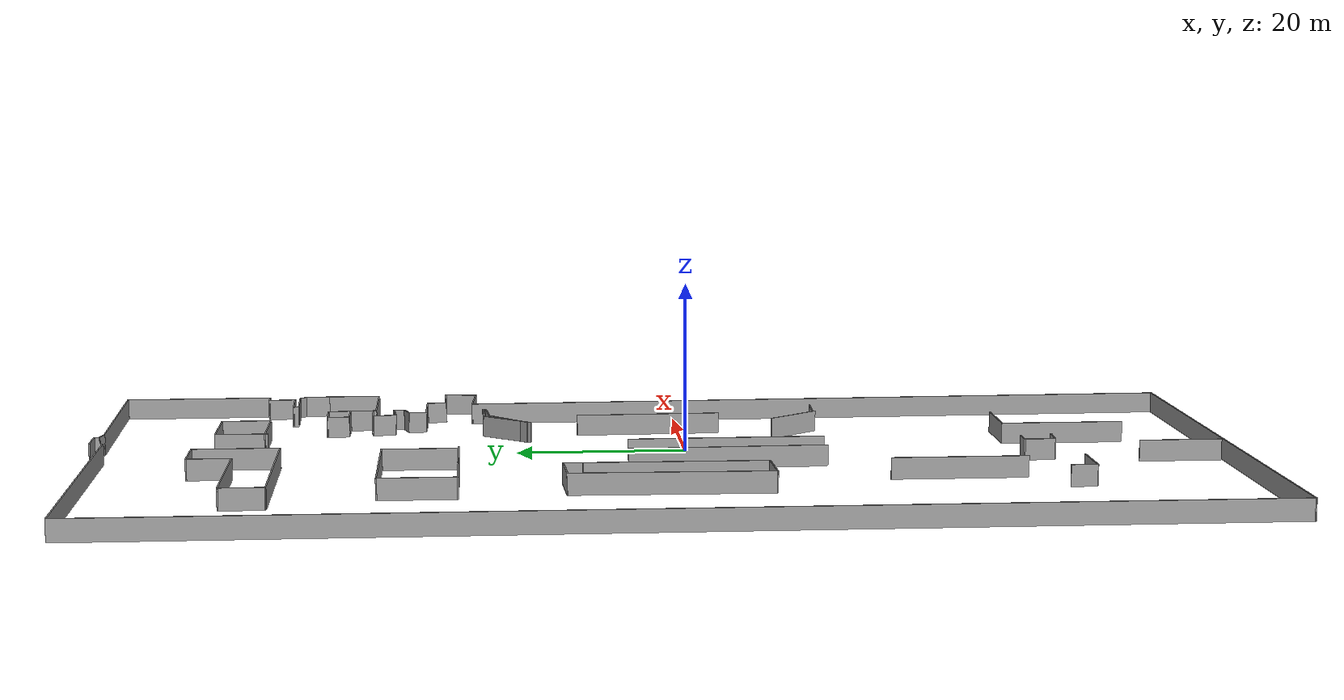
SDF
<?xml version='1.0'?>
<sdf version='1.7'>
  <model name='factory.world'>
    <pose>-7.7475 3.4866 0 0 -0 0</pose>
    <link name='Wall_10'>
      <collision name='Wall_10_Collision'>
        <geometry>
          <box>
            <size>3.4117 0.15 2.5</size>
          </box>
        </geometry>
        <pose>0 0 1.25 0 -0 0</pose>
      </collision>
      <visual name='Wall_10_Visual'>
        <pose>0 0 1.25 0 -0 0</pose>
        <geometry>
          <box>
            <size>3.4117 0.15 2.5</size>
          </box>
        </geometry>
        <material>
          <script>
            <uri>file://media/materials/scripts/gazebo.material</uri>
            <name>Gazebo/Grey</name>
          </script>
          <ambient>1 1 1 1</ambient>
        </material>
        <meta>
          <layer>0</layer>
        </meta>
      </visual>
      <pose>31.6898 45.9914 0 0 -0 -1.55467</pose>
    </link>
    <link name='Wall_11'>
      <collision name='Wall_11_Collision'>
        <geometry>
          <box>
            <size>5.35992 0.15 2.5</size>
          </box>
        </geometry>
        <pose>0 0 1.25 0 -0 0</pose>
      </collision>
      <visual name='Wall_11_Visual'>
        <pose>0 0 1.25 0 -0 0</pose>
        <geometry>
          <box>
            <size>5.35992 0.15 2.5</size>
          </box>
        </geometry>
        <material>
          <script>
            <uri>file://media/materials/scripts/gazebo.material</uri>
            <name>Gazebo/Grey</name>
          </script>
          <ambient>1 1 1 1</ambient>
        </material>
        <meta>
          <layer>0</layer>
        </meta>
      </visual>
      <pose>29.1123 44.2818 0 0 -0 -3.1113</pose>
    </link>
    <link name='Wall_12'>
      <collision name='Wall_12_Collision'>
        <geometry>
          <box>
            <size>0.789922 0.15 2.5</size>
          </box>
        </geometry>
        <pose>0 0 1.25 0 -0 0</pose>
      </collision>
      <visual name='Wall_12_Visual'>
        <pose>0 0 1.25 0 -0 0</pose>
        <geometry>
          <box>
            <size>0.789922 0.15 2.5</size>
          </box>
        </geometry>
        <material>
          <script>
            <uri>file://media/materials/scripts/gazebo.material</uri>
            <name>Gazebo/Grey</name>
          </script>
          <ambient>1 1 1 1</ambient>
        </material>
        <meta>
          <layer>0</layer>
        </meta>
      </visual>
      <pose>26.5612 43.8873 0 0 -0 -1.40565</pose>
    </link>
    <link name='Wall_13'>
      <collision name='Wall_13_Collision'>
        <geometry>
          <box>
            <size>6.15024 0.15 2.5</size>
          </box>
        </geometry>
        <pose>0 0 1.25 0 -0 0</pose>
      </collision>
      <visual name='Wall_13_Visual'>
        <pose>0 0 1.25 0 -0 0</pose>
        <geometry>
          <box>
            <size>6.15024 0.15 2.5</size>
          </box>
        </geometry>
        <material>
          <script>
            <uri>file://media/materials/scripts/gazebo.material</uri>
            <name>Gazebo/Grey</name>
          </script>
          <ambient>1 1 1 1</ambient>
        </material>
        <meta>
          <layer>0</layer>
        </meta>
      </visual>
      <pose>29.612 43.6769 0 0 -0 0.035073</pose>
    </link>
    <link name='Wall_14'>
      <collision name='Wall_14_Collision'>
        <geometry>
          <box>
            <size>1.19629 0.15 2.5</size>
          </box>
        </geometry>
        <pose>0 0 1.25 0 -0 0</pose>
      </collision>
      <visual name='Wall_14_Visual'>
        <pose>0 0 1.25 0 -0 0</pose>
        <geometry>
          <box>
            <size>1.19629 0.15 2.5</size>
          </box>
        </geometry>
        <material>
          <script>
            <uri>file://media/materials/scripts/gazebo.material</uri>
            <name>Gazebo/Grey</name>
          </script>
          <ambient>1 1 1 1</ambient>
        </material>
        <meta>
          <layer>0</layer>
        </meta>
      </visual>
      <pose>32.999 43.432 0 0 -0 -0.733238</pose>
    </link>
    <link name='Wall_15'>
      <collision name='Wall_15_Collision'>
        <geometry>
          <box>
            <size>3.35899 0.15 2.5</size>
          </box>
        </geometry>
        <pose>0 0 1.25 0 -0 0</pose>
      </collision>
      <visual name='Wall_15_Visual'>
        <pose>0 0 1.25 0 -0 0</pose>
        <geometry>
          <box>
            <size>3.35899 0.15 2.5</size>
          </box>
        </geometry>
        <material>
          <script>
            <uri>file://media/materials/scripts/gazebo.material</uri>
            <name>Gazebo/Grey</name>
          </script>
          <ambient>1 1 1 1</ambient>
        </material>
        <meta>
          <layer>0</layer>
        </meta>
      </visual>
      <pose>33.5077 41.4819 0 0 -0 -1.49594</pose>
    </link>
    <link name='Wall_17'>
      <collision name='Wall_17_Collision'>
        <geometry>
          <box>
            <size>6.39 0.15 2.5</size>
          </box>
        </geometry>
        <pose>0 0 1.25 0 -0 0</pose>
      </collision>
      <visual name='Wall_17_Visual'>
        <pose>0 0 1.25 0 -0 0</pose>
        <geometry>
          <box>
            <size>6.39 0.15 2.5</size>
          </box>
        </geometry>
        <material>
          <script>
            <uri>file://media/materials/scripts/gazebo.material</uri>
            <name>Gazebo/Grey</name>
          </script>
          <ambient>1 1 1 1</ambient>
        </material>
        <meta>
          <layer>0</layer>
        </meta>
      </visual>
      <pose>33.5477 36.9219 0 0 -0 -1.5708</pose>
    </link>
    <link name='Wall_18'>
      <collision name='Wall_18_Collision'>
        <geometry>
          <box>
            <size>10.23 0.15 2.5</size>
          </box>
        </geometry>
        <pose>0 0 1.25 0 -0 0</pose>
      </collision>
      <visual name='Wall_18_Visual'>
        <pose>0 0 1.25 0 -0 0</pose>
        <geometry>
          <box>
            <size>10.23 0.15 2.5</size>
          </box>
        </geometry>
        <material>
          <script>
            <uri>file://media/materials/scripts/gazebo.material</uri>
            <name>Gazebo/Grey</name>
          </script>
          <ambient>1 1 1 1</ambient>
        </material>
        <meta>
          <layer>0</layer>
        </meta>
      </visual>
      <pose>28.5077 33.8019 0 0 -0 3.14159</pose>
    </link>
    <link name='Wall_19'>
      <collision name='Wall_19_Collision'>
        <geometry>
          <box>
            <size>5.99876 0.15 2.5</size>
          </box>
        </geometry>
        <pose>0 0 1.25 0 -0 0</pose>
      </collision>
      <visual name='Wall_19_Visual'>
        <pose>0 0 1.25 0 -0 0</pose>
        <geometry>
          <box>
            <size>5.99876 0.15 2.5</size>
          </box>
        </geometry>
        <material>
          <script>
            <uri>file://media/materials/scripts/gazebo.material</uri>
            <name>Gazebo/Grey</name>
          </script>
          <ambient>1 1 1 1</ambient>
        </material>
        <meta>
          <layer>0</layer>
        </meta>
      </visual>
      <pose>23.3077 36.7219 0 0 -0 1.62554</pose>
    </link>
    <link name='Wall_20'>
      <collision name='Wall_20_Collision'>
        <geometry>
          <box>
            <size>4.07082 0.15 2.5</size>
          </box>
        </geometry>
        <pose>0 0 1.25 0 -0 0</pose>
      </collision>
      <visual name='Wall_20_Visual'>
        <pose>0 0 1.25 0 -0 0</pose>
        <geometry>
          <box>
            <size>4.07082 0.15 2.5</size>
          </box>
        </geometry>
        <material>
          <script>
            <uri>file://media/materials/scripts/gazebo.material</uri>
            <name>Gazebo/Grey</name>
          </script>
          <ambient>1 1 1 1</ambient>
        </material>
        <meta>
          <layer>0</layer>
        </meta>
      </visual>
      <pose>21.1877 39.6019 0 0 -0 -3.12119</pose>
    </link>
    <link name='Wall_21'>
      <collision name='Wall_21_Collision'>
        <geometry>
          <box>
            <size>2.79484 0.15 2.5</size>
          </box>
        </geometry>
        <pose>0 0 1.25 0 -0 0</pose>
      </collision>
      <visual name='Wall_21_Visual'>
        <pose>0 0 1.25 0 -0 0</pose>
        <geometry>
          <box>
            <size>2.79484 0.15 2.5</size>
          </box>
        </geometry>
        <material>
          <script>
            <uri>file://media/materials/scripts/gazebo.material</uri>
            <name>Gazebo/Grey</name>
          </script>
          <ambient>1 1 1 1</ambient>
        </material>
        <meta>
          <layer>0</layer>
        </meta>
      </visual>
      <pose>19.3077 38.2419 0 0 -0 -1.51026</pose>
    </link>
    <link name='Wall_22'>
      <collision name='Wall_22_Collision'>
        <geometry>
          <box>
            <size>3.99 0.15 2.5</size>
          </box>
        </geometry>
        <pose>0 0 1.25 0 -0 0</pose>
      </collision>
      <visual name='Wall_22_Visual'>
        <pose>0 0 1.25 0 -0 0</pose>
        <geometry>
          <box>
            <size>3.99 0.15 2.5</size>
          </box>
        </geometry>
        <material>
          <script>
            <uri>file://media/materials/scripts/gazebo.material</uri>
            <name>Gazebo/Grey</name>
          </script>
          <ambient>1 1 1 1</ambient>
        </material>
        <meta>
          <layer>0</layer>
        </meta>
      </visual>
      <pose>21.3077 36.9219 0 0 -0 0</pose>
    </link>
    <link name='Wall_24'>
      <collision name='Wall_24_Collision'>
        <geometry>
          <box>
            <size>3.51095 0.15 2.5</size>
          </box>
        </geometry>
        <pose>0 0 1.25 0 -0 0</pose>
      </collision>
      <visual name='Wall_24_Visual'>
        <pose>0 0 1.25 0 -0 0</pose>
        <geometry>
          <box>
            <size>3.51095 0.15 2.5</size>
          </box>
        </geometry>
        <material>
          <script>
            <uri>file://media/materials/scripts/gazebo.material</uri>
            <name>Gazebo/Grey</name>
          </script>
          <ambient>1 1 1 1</ambient>
        </material>
        <meta>
          <layer>0</layer>
        </meta>
      </visual>
      <pose>21.6277 34.0819 0 0 -0 -3.11779</pose>
    </link>
    <link name='Wall_25'>
      <collision name='Wall_25_Collision'>
        <geometry>
          <box>
            <size>2.96027 0.15 2.5</size>
          </box>
        </geometry>
        <pose>0 0 1.25 0 -0 0</pose>
      </collision>
      <visual name='Wall_25_Visual'>
        <pose>0 0 1.25 0 -0 0</pose>
        <geometry>
          <box>
            <size>2.96027 0.15 2.5</size>
          </box>
        </geometry>
        <material>
          <script>
            <uri>file://media/materials/scripts/gazebo.material</uri>
            <name>Gazebo/Grey</name>
          </script>
          <ambient>1 1 1 1</ambient>
        </material>
        <meta>
          <layer>0</layer>
        </meta>
      </visual>
      <pose>20.0677 32.6419 0 0 -0 -1.48529</pose>
    </link>
    <link name='Wall_26'>
      <collision name='Wall_26_Collision'>
        <geometry>
          <box>
            <size>3.60485 0.15 2.5</size>
          </box>
        </geometry>
        <pose>0 0 1.25 0 -0 0</pose>
      </collision>
      <visual name='Wall_26_Visual'>
        <pose>0 0 1.25 0 -0 0</pose>
        <geometry>
          <box>
            <size>3.60485 0.15 2.5</size>
          </box>
        </geometry>
        <material>
          <script>
            <uri>file://media/materials/scripts/gazebo.material</uri>
            <name>Gazebo/Grey</name>
          </script>
          <ambient>1 1 1 1</ambient>
        </material>
        <meta>
          <layer>0</layer>
        </meta>
      </visual>
      <pose>21.9077 31.4019 0 0 -0 0.092756</pose>
    </link>
    <link name='Wall_27'>
      <collision name='Wall_27_Collision'>
        <geometry>
          <box>
            <size>1.4325 0.15 2.5</size>
          </box>
        </geometry>
        <pose>0 0 1.25 0 -0 0</pose>
      </collision>
      <visual name='Wall_27_Visual'>
        <pose>0 0 1.25 0 -0 0</pose>
        <geometry>
          <box>
            <size>1.4325 0.15 2.5</size>
          </box>
        </geometry>
        <material>
          <script>
            <uri>file://media/materials/scripts/gazebo.material</uri>
            <name>Gazebo/Grey</name>
          </script>
          <ambient>1 1 1 1</ambient>
        </material>
        <meta>
          <layer>0</layer>
        </meta>
      </visual>
      <pose>23.5877 30.9219 0 0 -0 -1.63322</pose>
    </link>
    <link name='Wall_28'>
      <collision name='Wall_28_Collision'>
        <geometry>
          <box>
            <size>2.09813 0.15 2.5</size>
          </box>
        </geometry>
        <pose>0 0 1.25 0 -0 0</pose>
      </collision>
      <visual name='Wall_28_Visual'>
        <pose>0 0 1.25 0 -0 0</pose>
        <geometry>
          <box>
            <size>2.09813 0.15 2.5</size>
          </box>
        </geometry>
        <material>
          <script>
            <uri>file://media/materials/scripts/gazebo.material</uri>
            <name>Gazebo/Grey</name>
          </script>
          <ambient>1 1 1 1</ambient>
        </material>
        <meta>
          <layer>0</layer>
        </meta>
      </visual>
      <pose>22.6277 29.9619 0 0 -0 -2.80686</pose>
    </link>
    <link name='Wall_29'>
      <collision name='Wall_29_Collision'>
        <geometry>
          <box>
            <size>2.23154 0.15 2.5</size>
          </box>
        </geometry>
        <pose>0 0 1.25 0 -0 0</pose>
      </collision>
      <visual name='Wall_29_Visual'>
        <pose>0 0 1.25 0 -0 0</pose>
        <geometry>
          <box>
            <size>2.23154 0.15 2.5</size>
          </box>
        </geometry>
        <material>
          <script>
            <uri>file://media/materials/scripts/gazebo.material</uri>
            <name>Gazebo/Grey</name>
          </script>
          <ambient>1 1 1 1</ambient>
        </material>
        <meta>
          <layer>0</layer>
        </meta>
      </visual>
      <pose>21.7477 28.6019 0 0 -0 -1.53235</pose>
    </link>
    <link name='Wall_30'>
      <collision name='Wall_30_Collision'>
        <geometry>
          <box>
            <size>6.39193 0.15 2.5</size>
          </box>
        </geometry>
        <pose>0 0 1.25 0 -0 0</pose>
      </collision>
      <visual name='Wall_30_Visual'>
        <pose>0 0 1.25 0 -0 0</pose>
        <geometry>
          <box>
            <size>6.39193 0.15 2.5</size>
          </box>
        </geometry>
        <material>
          <script>
            <uri>file://media/materials/scripts/gazebo.material</uri>
            <name>Gazebo/Grey</name>
          </script>
          <ambient>1 1 1 1</ambient>
        </material>
        <meta>
          <layer>0</layer>
        </meta>
      </visual>
      <pose>24.9086 27.5375 0 0 -0 -0.007802</pose>
    </link>
    <link name='Wall_31'>
      <collision name='Wall_31_Collision'>
        <geometry>
          <box>
            <size>2.48 0.15 2.5</size>
          </box>
        </geometry>
        <pose>0 0 1.25 0 -0 0</pose>
      </collision>
      <visual name='Wall_31_Visual'>
        <pose>0 0 1.25 0 -0 0</pose>
        <geometry>
          <box>
            <size>2.48 0.15 2.5</size>
          </box>
        </geometry>
        <material>
          <script>
            <uri>file://media/materials/scripts/gazebo.material</uri>
            <name>Gazebo/Grey</name>
          </script>
          <ambient>1 1 1 1</ambient>
        </material>
        <meta>
          <layer>0</layer>
        </meta>
      </visual>
      <pose>28.0823 26.3494 0 0 -0 -1.52537</pose>
    </link>
    <link name='Wall_32'>
      <collision name='Wall_32_Collision'>
        <geometry>
          <box>
            <size>5.86418 0.15 2.5</size>
          </box>
        </geometry>
        <pose>0 0 1.25 0 -0 0</pose>
      </collision>
      <visual name='Wall_32_Visual'>
        <pose>0 0 1.25 0 -0 0</pose>
        <geometry>
          <box>
            <size>5.86418 0.15 2.5</size>
          </box>
        </geometry>
        <material>
          <script>
            <uri>file://media/materials/scripts/gazebo.material</uri>
            <name>Gazebo/Grey</name>
          </script>
          <ambient>1 1 1 1</ambient>
        </material>
        <meta>
          <layer>0</layer>
        </meta>
      </visual>
      <pose>30.9918 25.2385 0 0 -0 0.018516</pose>
    </link>
    <link name='Wall_33'>
      <collision name='Wall_33_Collision'>
        <geometry>
          <box>
            <size>3.98224 0.15 2.5</size>
          </box>
        </geometry>
        <pose>0 0 1.25 0 -0 0</pose>
      </collision>
      <visual name='Wall_33_Visual'>
        <pose>0 0 1.25 0 -0 0</pose>
        <geometry>
          <box>
            <size>3.98224 0.15 2.5</size>
          </box>
        </geometry>
        <material>
          <script>
            <uri>file://media/materials/scripts/gazebo.material</uri>
            <name>Gazebo/Grey</name>
          </script>
          <ambient>1 1 1 1</ambient>
        </material>
        <meta>
          <layer>0</layer>
        </meta>
      </visual>
      <pose>33.6368 23.387 0 0 -0 -1.68145</pose>
    </link>
    <link name='Wall_34'>
      <collision name='Wall_34_Collision'>
        <geometry>
          <box>
            <size>6.51209 0.15 2.5</size>
          </box>
        </geometry>
        <pose>0 0 1.25 0 -0 0</pose>
      </collision>
      <visual name='Wall_34_Visual'>
        <pose>0 0 1.25 0 -0 0</pose>
        <geometry>
          <box>
            <size>6.51209 0.15 2.5</size>
          </box>
        </geometry>
        <material>
          <script>
            <uri>file://media/materials/scripts/gazebo.material</uri>
            <name>Gazebo/Grey</name>
          </script>
          <ambient>1 1 1 1</ambient>
        </material>
        <meta>
          <layer>0</layer>
        </meta>
      </visual>
      <pose>30.2512 21.6942 0 0 -0 3.07502</pose>
    </link>
    <link name='Wall_35'>
      <collision name='Wall_35_Collision'>
        <geometry>
          <box>
            <size>87.6676 0.15 2.5</size>
          </box>
        </geometry>
        <pose>0 0 1.25 0 -0 0</pose>
      </collision>
      <visual name='Wall_35_Visual'>
        <pose>0 0 1.25 0 -0 0</pose>
        <geometry>
          <box>
            <size>87.6676 0.15 2.5</size>
          </box>
        </geometry>
        <material>
          <script>
            <uri>file://media/materials/scripts/gazebo.material</uri>
            <name>Gazebo/Grey</name>
          </script>
          <ambient>1 1 1 1</ambient>
        </material>
        <meta>
          <layer>0</layer>
        </meta>
      </visual>
      <pose>27.9352 -21.8446 0 0 -0 -1.55119</pose>
    </link>
    <link name='Wall_36'>
      <collision name='Wall_36_Collision'>
        <geometry>
          <box>
            <size>62.8007 0.15 2.5</size>
          </box>
        </geometry>
        <pose>0 0 1.25 0 -0 0</pose>
      </collision>
      <visual name='Wall_36_Visual'>
        <pose>0 0 1.25 0 -0 0</pose>
        <geometry>
          <box>
            <size>62.8007 0.15 2.5</size>
          </box>
        </geometry>
        <material>
          <script>
            <uri>file://media/materials/scripts/gazebo.material</uri>
            <name>Gazebo/Grey</name>
          </script>
          <ambient>1 1 1 1</ambient>
        </material>
        <meta>
          <layer>0</layer>
        </meta>
      </visual>
      <pose>-2.53129 -65.8398 0 0 -0 -3.13378</pose>
    </link>
    <link name='Wall_37'>
      <collision name='Wall_37_Collision'>
        <geometry>
          <box>
            <size>130.75 0.15 2.5</size>
          </box>
        </geometry>
        <pose>0 0 1.25 0 -0 0</pose>
      </collision>
      <visual name='Wall_37_Visual'>
        <pose>0 0 1.25 0 -0 0</pose>
        <geometry>
          <box>
            <size>130.75 0.15 2.5</size>
          </box>
        </geometry>
        <material>
          <script>
            <uri>file://media/materials/scripts/gazebo.material</uri>
            <name>Gazebo/Grey</name>
          </script>
          <ambient>1 1 1 1</ambient>
        </material>
        <meta>
          <layer>0</layer>
        </meta>
      </visual>
      <pose>-33.8557 -0.784479 0 0 -0 1.5708</pose>
    </link>
    <link name='Wall_38'>
      <collision name='Wall_38_Collision'>
        <geometry>
          <box>
            <size>38.5 0.15 2.5</size>
          </box>
        </geometry>
        <pose>0 0 1.25 0 -0 0</pose>
      </collision>
      <visual name='Wall_38_Visual'>
        <pose>0 0 1.25 0 -0 0</pose>
        <geometry>
          <box>
            <size>38.5 0.15 2.5</size>
          </box>
        </geometry>
        <material>
          <script>
            <uri>file://media/materials/scripts/gazebo.material</uri>
            <name>Gazebo/Grey</name>
          </script>
          <ambient>1 1 1 1</ambient>
        </material>
        <meta>
          <layer>0</layer>
        </meta>
      </visual>
      <pose>-14.6807 64.5155 0 0 -0 0</pose>
    </link>
    <link name='Wall_4'>
      <collision name='Wall_4_Collision'>
        <geometry>
          <box>
            <size>4 0.15 2.5</size>
          </box>
        </geometry>
        <pose>0 0 1.25 0 -0 0</pose>
      </collision>
      <visual name='Wall_4_Visual'>
        <pose>0 0 1.25 0 -0 0</pose>
        <geometry>
          <box>
            <size>4 0.15 2.5</size>
          </box>
        </geometry>
        <material>
          <script>
            <uri>file://media/materials/scripts/gazebo.material</uri>
            <name>Gazebo/Grey</name>
          </script>
          <ambient>1 1 1 1</ambient>
        </material>
        <meta>
          <layer>0</layer>
        </meta>
      </visual>
      <pose>6.65661 66.0851 0 0 -0 0</pose>
    </link>
    <link name='Wall_40'>
      <collision name='Wall_40_Collision'>
        <geometry>
          <box>
            <size>7.29112 0.15 2.5</size>
          </box>
        </geometry>
        <pose>0 0 1.25 0 -0 0</pose>
      </collision>
      <visual name='Wall_40_Visual'>
        <pose>0 0 1.25 0 -0 0</pose>
        <geometry>
          <box>
            <size>7.29112 0.15 2.5</size>
          </box>
        </geometry>
        <material>
          <script>
            <uri>file://media/materials/scripts/gazebo.material</uri>
            <name>Gazebo/Grey</name>
          </script>
          <ambient>1 1 1 1</ambient>
        </material>
        <meta>
          <layer>0</layer>
        </meta>
      </visual>
      <pose>16.441 17.6288 0 0 -0 0.904103</pose>
    </link>
    <link name='Wall_41'>
      <collision name='Wall_41_Collision'>
        <geometry>
          <box>
            <size>5.02687 0.15 2.5</size>
          </box>
        </geometry>
        <pose>0 0 1.25 0 -0 0</pose>
      </collision>
      <visual name='Wall_41_Visual'>
        <pose>0 0 1.25 0 -0 0</pose>
        <geometry>
          <box>
            <size>5.02687 0.15 2.5</size>
          </box>
        </geometry>
        <material>
          <script>
            <uri>file://media/materials/scripts/gazebo.material</uri>
            <name>Gazebo/Grey</name>
          </script>
          <ambient>1 1 1 1</ambient>
        </material>
        <meta>
          <layer>0</layer>
        </meta>
      </visual>
      <pose>21.087 20.4808 0 0 -0 0.018866</pose>
    </link>
    <link name='Wall_43'>
      <collision name='Wall_43_Collision'>
        <geometry>
          <box>
            <size>17.4499 0.15 2.5</size>
          </box>
        </geometry>
        <pose>0 0 1.25 0 -0 0</pose>
      </collision>
      <visual name='Wall_43_Visual'>
        <pose>0 0 1.25 0 -0 0</pose>
        <geometry>
          <box>
            <size>17.4499 0.15 2.5</size>
          </box>
        </geometry>
        <material>
          <script>
            <uri>file://media/materials/scripts/gazebo.material</uri>
            <name>Gazebo/Grey</name>
          </script>
          <ambient>1 1 1 1</ambient>
        </material>
        <meta>
          <layer>0</layer>
        </meta>
      </visual>
      <pose>18.649 0.286782 0 0 -0 -1.54952</pose>
    </link>
    <link name='Wall_45'>
      <collision name='Wall_45_Collision'>
        <geometry>
          <box>
            <size>4.32845 0.15 2.5</size>
          </box>
        </geometry>
        <pose>0 0 1.25 0 -0 0</pose>
      </collision>
      <visual name='Wall_45_Visual'>
        <pose>0 0 1.25 0 -0 0</pose>
        <geometry>
          <box>
            <size>4.32845 0.15 2.5</size>
          </box>
        </geometry>
        <material>
          <script>
            <uri>file://media/materials/scripts/gazebo.material</uri>
            <name>Gazebo/Grey</name>
          </script>
          <ambient>1 1 1 1</ambient>
        </material>
        <meta>
          <layer>0</layer>
        </meta>
      </visual>
      <pose>21.2538 -20.3212 0 0 -0 3.09754</pose>
    </link>
    <link name='Wall_46'>
      <collision name='Wall_46_Collision'>
        <geometry>
          <box>
            <size>7.43661 0.15 2.5</size>
          </box>
        </geometry>
        <pose>0 0 1.25 0 -0 0</pose>
      </collision>
      <visual name='Wall_46_Visual'>
        <pose>0 0 1.25 0 -0 0</pose>
        <geometry>
          <box>
            <size>7.43661 0.15 2.5</size>
          </box>
        </geometry>
        <material>
          <script>
            <uri>file://media/materials/scripts/gazebo.material</uri>
            <name>Gazebo/Grey</name>
          </script>
          <ambient>1 1 1 1</ambient>
        </material>
        <meta>
          <layer>0</layer>
        </meta>
      </visual>
      <pose>16.9586 -17.544 0 0 -0 2.22187</pose>
    </link>
    <link name='Wall_48'>
      <collision name='Wall_48_Collision'>
        <geometry>
          <box>
            <size>23.1517 0.15 2.5</size>
          </box>
        </geometry>
        <pose>0 0 1.25 0 -0 0</pose>
      </collision>
      <visual name='Wall_48_Visual'>
        <pose>0 0 1.25 0 -0 0</pose>
        <geometry>
          <box>
            <size>23.1517 0.15 2.5</size>
          </box>
        </geometry>
        <material>
          <script>
            <uri>file://media/materials/scripts/gazebo.material</uri>
            <name>Gazebo/Grey</name>
          </script>
          <ambient>1 1 1 1</ambient>
        </material>
        <meta>
          <layer>0</layer>
        </meta>
      </visual>
      <pose>3.05497 -7.90122 0 0 -0 -1.5588</pose>
    </link>
    <link name='Wall_5'>
      <collision name='Wall_5_Collision'>
        <geometry>
          <box>
            <size>0.75 0.15 2.5</size>
          </box>
        </geometry>
        <pose>0 0 1.25 0 -0 0</pose>
      </collision>
      <visual name='Wall_5_Visual'>
        <pose>0 0 1.25 0 -0 0</pose>
        <geometry>
          <box>
            <size>0.75 0.15 2.5</size>
          </box>
        </geometry>
        <material>
          <script>
            <uri>file://media/materials/scripts/gazebo.material</uri>
            <name>Gazebo/Grey</name>
          </script>
          <ambient>1 1 1 1</ambient>
        </material>
        <meta>
          <layer>0</layer>
        </meta>
      </visual>
      <pose>8.58161 65.7851 0 0 -0 -1.5708</pose>
    </link>
    <link name='Wall_50'>
      <collision name='Wall_50_Collision'>
        <geometry>
          <box>
            <size>23.159 0.15 2.5</size>
          </box>
        </geometry>
        <pose>0 0 1.25 0 -0 0</pose>
      </collision>
      <visual name='Wall_50_Visual'>
        <pose>0 0 1.25 0 -0 0</pose>
        <geometry>
          <box>
            <size>23.159 0.15 2.5</size>
          </box>
        </geometry>
        <material>
          <script>
            <uri>file://media/materials/scripts/gazebo.material</uri>
            <name>Gazebo/Grey</name>
          </script>
          <ambient>1 1 1 1</ambient>
        </material>
        <meta>
          <layer>0</layer>
        </meta>
      </visual>
      <pose>-2.37303 -7.62522 0 0 -0 -1.5428</pose>
    </link>
    <link name='Wall_52'>
      <collision name='Wall_52_Collision'>
        <geometry>
          <box>
            <size>21.8638 0.15 2.5</size>
          </box>
        </geometry>
        <pose>0 0 1.25 0 -0 0</pose>
      </collision>
      <visual name='Wall_52_Visual'>
        <pose>0 0 1.25 0 -0 0</pose>
        <geometry>
          <box>
            <size>21.8638 0.15 2.5</size>
          </box>
        </geometry>
        <material>
          <script>
            <uri>file://media/materials/scripts/gazebo.material</uri>
            <name>Gazebo/Grey</name>
          </script>
          <ambient>1 1 1 1</ambient>
        </material>
        <meta>
          <layer>0</layer>
        </meta>
      </visual>
      <pose>-10.285 -0.633218 0 0 -0 -1.58351</pose>
    </link>
    <link name='Wall_53'>
      <collision name='Wall_53_Collision'>
        <geometry>
          <box>
            <size>5.85697 0.15 2.5</size>
          </box>
        </geometry>
        <pose>0 0 1.25 0 -0 0</pose>
      </collision>
      <visual name='Wall_53_Visual'>
        <pose>0 0 1.25 0 -0 0</pose>
        <geometry>
          <box>
            <size>5.85697 0.15 2.5</size>
          </box>
        </geometry>
        <material>
          <script>
            <uri>file://media/materials/scripts/gazebo.material</uri>
            <name>Gazebo/Grey</name>
          </script>
          <ambient>1 1 1 1</ambient>
        </material>
        <meta>
          <layer>0</layer>
        </meta>
      </visual>
      <pose>-13.275 -11.5812 0 0 -0 -3.10935</pose>
    </link>
    <link name='Wall_54'>
      <collision name='Wall_54_Collision'>
        <geometry>
          <box>
            <size>23.2466 0.15 2.5</size>
          </box>
        </geometry>
        <pose>0 0 1.25 0 -0 0</pose>
      </collision>
      <visual name='Wall_54_Visual'>
        <pose>0 0 1.25 0 -0 0</pose>
        <geometry>
          <box>
            <size>23.2466 0.15 2.5</size>
          </box>
        </geometry>
        <material>
          <script>
            <uri>file://media/materials/scripts/gazebo.material</uri>
            <name>Gazebo/Grey</name>
          </script>
          <ambient>1 1 1 1</ambient>
        </material>
        <meta>
          <layer>0</layer>
        </meta>
      </visual>
      <pose>-15.897 -0.127218 0 0 -0 1.55088</pose>
    </link>
    <link name='Wall_55'>
      <collision name='Wall_55_Collision'>
        <geometry>
          <box>
            <size>5.6769 0.15 2.5</size>
          </box>
        </geometry>
        <pose>0 0 1.25 0 -0 0</pose>
      </collision>
      <visual name='Wall_55_Visual'>
        <pose>0 0 1.25 0 -0 0</pose>
        <geometry>
          <box>
            <size>5.6769 0.15 2.5</size>
          </box>
        </geometry>
        <material>
          <script>
            <uri>file://media/materials/scripts/gazebo.material</uri>
            <name>Gazebo/Grey</name>
          </script>
          <ambient>1 1 1 1</ambient>
        </material>
        <meta>
          <layer>0</layer>
        </meta>
      </visual>
      <pose>-12.907 11.5568 0 0 -0 0.049958</pose>
    </link>
    <link name='Wall_56'>
      <collision name='Wall_56_Collision'>
        <geometry>
          <box>
            <size>2.27399 0.15 2.5</size>
          </box>
        </geometry>
        <pose>0 0 1.25 0 -0 0</pose>
      </collision>
      <visual name='Wall_56_Visual'>
        <pose>0 0 1.25 0 -0 0</pose>
        <geometry>
          <box>
            <size>2.27399 0.15 2.5</size>
          </box>
        </geometry>
        <material>
          <script>
            <uri>file://media/materials/scripts/gazebo.material</uri>
            <name>Gazebo/Grey</name>
          </script>
          <ambient>1 1 1 1</ambient>
        </material>
        <meta>
          <layer>0</layer>
        </meta>
      </visual>
      <pose>-10.239 10.6368 0 0 -0 -1.65753</pose>
    </link>
    <link name='Wall_58'>
      <collision name='Wall_58_Collision'>
        <geometry>
          <box>
            <size>15.75 0.15 2.5</size>
          </box>
        </geometry>
        <pose>0 0 1.25 0 -0 0</pose>
      </collision>
      <visual name='Wall_58_Visual'>
        <pose>0 0 1.25 0 -0 0</pose>
        <geometry>
          <box>
            <size>15.75 0.15 2.5</size>
          </box>
        </geometry>
        <material>
          <script>
            <uri>file://media/materials/scripts/gazebo.material</uri>
            <name>Gazebo/Grey</name>
          </script>
          <ambient>1 1 1 1</ambient>
        </material>
        <meta>
          <layer>0</layer>
        </meta>
      </visual>
      <pose>-9.95992 -33.1464 0 0 -0 -1.5708</pose>
    </link>
    <link name='Wall_6'>
      <collision name='Wall_6_Collision'>
        <geometry>
          <box>
            <size>1.5 0.15 2.5</size>
          </box>
        </geometry>
        <pose>0 0 1.25 0 -0 0</pose>
      </collision>
      <visual name='Wall_6_Visual'>
        <pose>0 0 1.25 0 -0 0</pose>
        <geometry>
          <box>
            <size>1.5 0.15 2.5</size>
          </box>
        </geometry>
        <material>
          <script>
            <uri>file://media/materials/scripts/gazebo.material</uri>
            <name>Gazebo/Grey</name>
          </script>
          <ambient>1 1 1 1</ambient>
        </material>
        <meta>
          <layer>0</layer>
        </meta>
      </visual>
      <pose>9.23361 65.3104 0 0 -0 -0.261799</pose>
    </link>
    <link name='Wall_60'>
      <collision name='Wall_60_Collision'>
        <geometry>
          <box>
            <size>17 0.15 2.5</size>
          </box>
        </geometry>
        <pose>0 0 1.25 0 -0 0</pose>
      </collision>
      <visual name='Wall_60_Visual'>
        <pose>0 0 1.25 0 -0 0</pose>
        <geometry>
          <box>
            <size>17 0.15 2.5</size>
          </box>
        </geometry>
        <material>
          <script>
            <uri>file://media/materials/scripts/gazebo.material</uri>
            <name>Gazebo/Grey</name>
          </script>
          <ambient>1 1 1 1</ambient>
        </material>
        <meta>
          <layer>0</layer>
        </meta>
      </visual>
      <pose>-8.35132 23.3532 0 0 -0 3.14159</pose>
    </link>
    <link name='Wall_61'>
      <collision name='Wall_61_Collision'>
        <geometry>
          <box>
            <size>9 0.15 2.5</size>
          </box>
        </geometry>
        <pose>0 0 1.25 0 -0 0</pose>
      </collision>
      <visual name='Wall_61_Visual'>
        <pose>0 0 1.25 0 -0 0</pose>
        <geometry>
          <box>
            <size>9 0.15 2.5</size>
          </box>
        </geometry>
        <material>
          <script>
            <uri>file://media/materials/scripts/gazebo.material</uri>
            <name>Gazebo/Grey</name>
          </script>
          <ambient>1 1 1 1</ambient>
        </material>
        <meta>
          <layer>0</layer>
        </meta>
      </visual>
      <pose>-16.7763 27.7782 0 0 -0 1.5708</pose>
    </link>
    <link name='Wall_62'>
      <collision name='Wall_62_Collision'>
        <geometry>
          <box>
            <size>16 0.15 2.5</size>
          </box>
        </geometry>
        <pose>0 0 1.25 0 -0 0</pose>
      </collision>
      <visual name='Wall_62_Visual'>
        <pose>0 0 1.25 0 -0 0</pose>
        <geometry>
          <box>
            <size>16 0.15 2.5</size>
          </box>
        </geometry>
        <material>
          <script>
            <uri>file://media/materials/scripts/gazebo.material</uri>
            <name>Gazebo/Grey</name>
          </script>
          <ambient>1 1 1 1</ambient>
        </material>
        <meta>
          <layer>0</layer>
        </meta>
      </visual>
      <pose>-8.85132 32.2032 0 0 -0 0</pose>
    </link>
    <link name='Wall_63'>
      <collision name='Wall_63_Collision'>
        <geometry>
          <box>
            <size>8.75 0.15 2.5</size>
          </box>
        </geometry>
        <pose>0 0 1.25 0 -0 0</pose>
      </collision>
      <visual name='Wall_63_Visual'>
        <pose>0 0 1.25 0 -0 0</pose>
        <geometry>
          <box>
            <size>8.75 0.15 2.5</size>
          </box>
        </geometry>
        <material>
          <script>
            <uri>file://media/materials/scripts/gazebo.material</uri>
            <name>Gazebo/Grey</name>
          </script>
          <ambient>1 1 1 1</ambient>
        </material>
        <meta>
          <layer>0</layer>
        </meta>
      </visual>
      <pose>-0.926323 27.9032 0 0 -0 -1.5708</pose>
    </link>
    <link name='Wall_65'>
      <collision name='Wall_65_Collision'>
        <geometry>
          <box>
            <size>6.25 0.15 2.5</size>
          </box>
        </geometry>
        <pose>0 0 1.25 0 -0 0</pose>
      </collision>
      <visual name='Wall_65_Visual'>
        <pose>0 0 1.25 0 -0 0</pose>
        <geometry>
          <box>
            <size>6.25 0.15 2.5</size>
          </box>
        </geometry>
        <material>
          <script>
            <uri>file://media/materials/scripts/gazebo.material</uri>
            <name>Gazebo/Grey</name>
          </script>
          <ambient>1 1 1 1</ambient>
        </material>
        <meta>
          <layer>0</layer>
        </meta>
      </visual>
      <pose>9.25946 49.0754 0 0 -0 1.5708</pose>
    </link>
    <link name='Wall_66'>
      <collision name='Wall_66_Collision'>
        <geometry>
          <box>
            <size>8.5 0.15 2.5</size>
          </box>
        </geometry>
        <pose>0 0 1.25 0 -0 0</pose>
      </collision>
      <visual name='Wall_66_Visual'>
        <pose>0 0 1.25 0 -0 0</pose>
        <geometry>
          <box>
            <size>8.5 0.15 2.5</size>
          </box>
        </geometry>
        <material>
          <script>
            <uri>file://media/materials/scripts/gazebo.material</uri>
            <name>Gazebo/Grey</name>
          </script>
          <ambient>1 1 1 1</ambient>
        </material>
        <meta>
          <layer>0</layer>
        </meta>
      </visual>
      <pose>13.4345 52.1254 0 0 -0 0</pose>
    </link>
    <link name='Wall_67'>
      <collision name='Wall_67_Collision'>
        <geometry>
          <box>
            <size>6 0.15 2.5</size>
          </box>
        </geometry>
        <pose>0 0 1.25 0 -0 0</pose>
      </collision>
      <visual name='Wall_67_Visual'>
        <pose>0 0 1.25 0 -0 0</pose>
        <geometry>
          <box>
            <size>6 0.15 2.5</size>
          </box>
        </geometry>
        <material>
          <script>
            <uri>file://media/materials/scripts/gazebo.material</uri>
            <name>Gazebo/Grey</name>
          </script>
          <ambient>1 1 1 1</ambient>
        </material>
        <meta>
          <layer>0</layer>
        </meta>
      </visual>
      <pose>17.6095 49.2004 0 0 -0 -1.5708</pose>
    </link>
    <link name='Wall_68'>
      <collision name='Wall_68_Collision'>
        <geometry>
          <box>
            <size>8.75 0.15 2.5</size>
          </box>
        </geometry>
        <pose>0 0 1.25 0 -0 0</pose>
      </collision>
      <visual name='Wall_68_Visual'>
        <pose>0 0 1.25 0 -0 0</pose>
        <geometry>
          <box>
            <size>8.75 0.15 2.5</size>
          </box>
        </geometry>
        <material>
          <script>
            <uri>file://media/materials/scripts/gazebo.material</uri>
            <name>Gazebo/Grey</name>
          </script>
          <ambient>1 1 1 1</ambient>
        </material>
        <meta>
          <layer>0</layer>
        </meta>
      </visual>
      <pose>13.3095 46.2754 0 0 -0 3.14159</pose>
    </link>
    <link name='Wall_7'>
      <collision name='Wall_7_Collision'>
        <geometry>
          <box>
            <size>23.5097 0.15 2.5</size>
          </box>
        </geometry>
        <pose>0 0 1.25 0 -0 0</pose>
      </collision>
      <visual name='Wall_7_Visual'>
        <pose>0 0 1.25 0 -0 0</pose>
        <geometry>
          <box>
            <size>23.5097 0.15 2.5</size>
          </box>
        </geometry>
        <material>
          <script>
            <uri>file://media/materials/scripts/gazebo.material</uri>
            <name>Gazebo/Grey</name>
          </script>
          <ambient>1 1 1 1</ambient>
        </material>
        <meta>
          <layer>0</layer>
        </meta>
      </visual>
      <pose>21.5636 65.3474 0 0 -0 0.018126</pose>
    </link>
    <link name='Wall_70'>
      <collision name='Wall_70_Collision'>
        <geometry>
          <box>
            <size>10.25 0.15 2.5</size>
          </box>
        </geometry>
        <pose>0 0 1.25 0 -0 0</pose>
      </collision>
      <visual name='Wall_70_Visual'>
        <pose>0 0 1.25 0 -0 0</pose>
        <geometry>
          <box>
            <size>10.25 0.15 2.5</size>
          </box>
        </geometry>
        <material>
          <script>
            <uri>file://media/materials/scripts/gazebo.material</uri>
            <name>Gazebo/Grey</name>
          </script>
          <ambient>1 1 1 1</ambient>
        </material>
        <meta>
          <layer>0</layer>
        </meta>
      </visual>
      <pose>0.62089 48.8853 0 0 -0 1.5708</pose>
    </link>
    <link name='Wall_71'>
      <collision name='Wall_71_Collision'>
        <geometry>
          <box>
            <size>5.75 0.15 2.5</size>
          </box>
        </geometry>
        <pose>0 0 1.25 0 -0 0</pose>
      </collision>
      <visual name='Wall_71_Visual'>
        <pose>0 0 1.25 0 -0 0</pose>
        <geometry>
          <box>
            <size>5.75 0.15 2.5</size>
          </box>
        </geometry>
        <material>
          <script>
            <uri>file://media/materials/scripts/gazebo.material</uri>
            <name>Gazebo/Grey</name>
          </script>
          <ambient>1 1 1 1</ambient>
        </material>
        <meta>
          <layer>0</layer>
        </meta>
      </visual>
      <pose>-2.17911 53.9353 0 0 -0 3.14159</pose>
    </link>
    <link name='Wall_72'>
      <collision name='Wall_72_Collision'>
        <geometry>
          <box>
            <size>5.25 0.15 2.5</size>
          </box>
        </geometry>
        <pose>0 0 1.25 0 -0 0</pose>
      </collision>
      <visual name='Wall_72_Visual'>
        <pose>0 0 1.25 0 -0 0</pose>
        <geometry>
          <box>
            <size>5.25 0.15 2.5</size>
          </box>
        </geometry>
        <material>
          <script>
            <uri>file://media/materials/scripts/gazebo.material</uri>
            <name>Gazebo/Grey</name>
          </script>
          <ambient>1 1 1 1</ambient>
        </material>
        <meta>
          <layer>0</layer>
        </meta>
      </visual>
      <pose>-4.97911 51.3853 0 0 -0 -1.5708</pose>
    </link>
    <link name='Wall_73'>
      <collision name='Wall_73_Collision'>
        <geometry>
          <box>
            <size>15.75 0.15 2.5</size>
          </box>
        </geometry>
        <pose>0 0 1.25 0 -0 0</pose>
      </collision>
      <visual name='Wall_73_Visual'>
        <pose>0 0 1.25 0 -0 0</pose>
        <geometry>
          <box>
            <size>15.75 0.15 2.5</size>
          </box>
        </geometry>
        <material>
          <script>
            <uri>file://media/materials/scripts/gazebo.material</uri>
            <name>Gazebo/Grey</name>
          </script>
          <ambient>1 1 1 1</ambient>
        </material>
        <meta>
          <layer>0</layer>
        </meta>
      </visual>
      <pose>-12.7791 48.8353 0 0 -0 3.14159</pose>
    </link>
    <link name='Wall_74'>
      <collision name='Wall_74_Collision'>
        <geometry>
          <box>
            <size>5.25 0.15 2.5</size>
          </box>
        </geometry>
        <pose>0 0 1.25 0 -0 0</pose>
      </collision>
      <visual name='Wall_74_Visual'>
        <pose>0 0 1.25 0 -0 0</pose>
        <geometry>
          <box>
            <size>5.25 0.15 2.5</size>
          </box>
        </geometry>
        <material>
          <script>
            <uri>file://media/materials/scripts/gazebo.material</uri>
            <name>Gazebo/Grey</name>
          </script>
          <ambient>1 1 1 1</ambient>
        </material>
        <meta>
          <layer>0</layer>
        </meta>
      </visual>
      <pose>-20.5791 46.2853 0 0 -0 -1.5708</pose>
    </link>
    <link name='Wall_75'>
      <collision name='Wall_75_Collision'>
        <geometry>
          <box>
            <size>21.3502 0.15 2.5</size>
          </box>
        </geometry>
        <pose>0 0 1.25 0 -0 0</pose>
      </collision>
      <visual name='Wall_75_Visual'>
        <pose>0 0 1.25 0 -0 0</pose>
        <geometry>
          <box>
            <size>21.3502 0.15 2.5</size>
          </box>
        </geometry>
        <material>
          <script>
            <uri>file://media/materials/scripts/gazebo.material</uri>
            <name>Gazebo/Grey</name>
          </script>
          <ambient>1 1 1 1</ambient>
        </material>
        <meta>
          <layer>0</layer>
        </meta>
      </visual>
      <pose>-9.97911 43.7853 0 0 -0 0.004717</pose>
    </link>
    <link name='Wall_77'>
      <collision name='Wall_77_Collision'>
        <geometry>
          <box>
            <size>6.62211 0.15 2.5</size>
          </box>
        </geometry>
        <pose>0 0 1.25 0 -0 0</pose>
      </collision>
      <visual name='Wall_77_Visual'>
        <pose>0 0 1.25 0 -0 0</pose>
        <geometry>
          <box>
            <size>6.62211 0.15 2.5</size>
          </box>
        </geometry>
        <material>
          <script>
            <uri>file://media/materials/scripts/gazebo.material</uri>
            <name>Gazebo/Grey</name>
          </script>
          <ambient>1 1 1 1</ambient>
        </material>
        <meta>
          <layer>0</layer>
        </meta>
      </visual>
      <pose>16.7828 17.5566 0 0 -0 0.762147</pose>
    </link>
    <link name='Wall_78'>
      <collision name='Wall_78_Collision'>
        <geometry>
          <box>
            <size>4.42726 0.15 2.5</size>
          </box>
        </geometry>
        <pose>0 0 1.25 0 -0 0</pose>
      </collision>
      <visual name='Wall_78_Visual'>
        <pose>0 0 1.25 0 -0 0</pose>
        <geometry>
          <box>
            <size>4.42726 0.15 2.5</size>
          </box>
        </geometry>
        <material>
          <script>
            <uri>file://media/materials/scripts/gazebo.material</uri>
            <name>Gazebo/Grey</name>
          </script>
          <ambient>1 1 1 1</ambient>
        </material>
        <meta>
          <layer>0</layer>
        </meta>
      </visual>
      <pose>21.2516 20.0039 0 0 -0 0.099669</pose>
    </link>
    <link name='Wall_8'>
      <collision name='Wall_8_Collision'>
        <geometry>
          <box>
            <size>18.0877 0.15 2.5</size>
          </box>
        </geometry>
        <pose>0 0 1.25 0 -0 0</pose>
      </collision>
      <visual name='Wall_8_Visual'>
        <pose>0 0 1.25 0 -0 0</pose>
        <geometry>
          <box>
            <size>18.0877 0.15 2.5</size>
          </box>
        </geometry>
        <material>
          <script>
            <uri>file://media/materials/scripts/gazebo.material</uri>
            <name>Gazebo/Grey</name>
          </script>
          <ambient>1 1 1 1</ambient>
        </material>
        <meta>
          <layer>0</layer>
        </meta>
      </visual>
      <pose>33.3204 56.5905 0 0 -0 -1.562</pose>
    </link>
    <link name='Wall_80'>
      <collision name='Wall_80_Collision'>
        <geometry>
          <box>
            <size>14.75 0.15 2.5</size>
          </box>
        </geometry>
        <pose>0 0 1.25 0 -0 0</pose>
      </collision>
      <visual name='Wall_80_Visual'>
        <pose>0 0 1.25 0 -0 0</pose>
        <geometry>
          <box>
            <size>14.75 0.15 2.5</size>
          </box>
        </geometry>
        <material>
          <script>
            <uri>file://media/materials/scripts/gazebo.material</uri>
            <name>Gazebo/Grey</name>
          </script>
          <ambient>1 1 1 1</ambient>
        </material>
        <meta>
          <layer>0</layer>
        </meta>
      </visual>
      <pose>9.56497 -49.3642 0 0 -0 1.5708</pose>
    </link>
    <link name='Wall_81'>
      <collision name='Wall_81_Collision'>
        <geometry>
          <box>
            <size>7.5 0.15 2.5</size>
          </box>
        </geometry>
        <pose>0 0 1.25 0 -0 0</pose>
      </collision>
      <visual name='Wall_81_Visual'>
        <pose>0 0 1.25 0 -0 0</pose>
        <geometry>
          <box>
            <size>7.5 0.15 2.5</size>
          </box>
        </geometry>
        <material>
          <script>
            <uri>file://media/materials/scripts/gazebo.material</uri>
            <name>Gazebo/Grey</name>
          </script>
          <ambient>1 1 1 1</ambient>
        </material>
        <meta>
          <layer>0</layer>
        </meta>
      </visual>
      <pose>13.24 -42.0642 0 0 -0 0</pose>
    </link>
    <link name='Wall_83'>
      <collision name='Wall_83_Collision'>
        <geometry>
          <box>
            <size>2.25 0.15 2.5</size>
          </box>
        </geometry>
        <pose>0 0 1.25 0 -0 0</pose>
      </collision>
      <visual name='Wall_83_Visual'>
        <pose>0 0 1.25 0 -0 0</pose>
        <geometry>
          <box>
            <size>2.25 0.15 2.5</size>
          </box>
        </geometry>
        <material>
          <script>
            <uri>file://media/materials/scripts/gazebo.material</uri>
            <name>Gazebo/Grey</name>
          </script>
          <ambient>1 1 1 1</ambient>
        </material>
        <meta>
          <layer>0</layer>
        </meta>
      </visual>
      <pose>0.641306 -42.6193 0 0 -0 3.14159</pose>
    </link>
    <link name='Wall_84'>
      <collision name='Wall_84_Collision'>
        <geometry>
          <box>
            <size>3.75 0.15 2.5</size>
          </box>
        </geometry>
        <pose>0 0 1.25 0 -0 0</pose>
      </collision>
      <visual name='Wall_84_Visual'>
        <pose>0 0 1.25 0 -0 0</pose>
        <geometry>
          <box>
            <size>3.75 0.15 2.5</size>
          </box>
        </geometry>
        <material>
          <script>
            <uri>file://media/materials/scripts/gazebo.material</uri>
            <name>Gazebo/Grey</name>
          </script>
          <ambient>1 1 1 1</ambient>
        </material>
        <meta>
          <layer>0</layer>
        </meta>
      </visual>
      <pose>-0.408694 -44.4193 0 0 -0 -1.5708</pose>
    </link>
    <link name='Wall_85'>
      <collision name='Wall_85_Collision'>
        <geometry>
          <box>
            <size>3.32239 0.15 2.5</size>
          </box>
        </geometry>
        <pose>0 0 1.25 0 -0 0</pose>
      </collision>
      <visual name='Wall_85_Visual'>
        <pose>0 0 1.25 0 -0 0</pose>
        <geometry>
          <box>
            <size>3.32239 0.15 2.5</size>
          </box>
        </geometry>
        <material>
          <script>
            <uri>file://media/materials/scripts/gazebo.material</uri>
            <name>Gazebo/Grey</name>
          </script>
          <ambient>1 1 1 1</ambient>
        </material>
        <meta>
          <layer>0</layer>
        </meta>
      </visual>
      <pose>1.17331 -46.3346 0 0 -0 -0.0727</pose>
    </link>
    <link name='Wall_87'>
      <collision name='Wall_87_Collision'>
        <geometry>
          <box>
            <size>9.75 0.15 2.5</size>
          </box>
        </geometry>
        <pose>0 0 1.25 0 -0 0</pose>
      </collision>
      <visual name='Wall_87_Visual'>
        <pose>0 0 1.25 0 -0 0</pose>
        <geometry>
          <box>
            <size>9.75 0.15 2.5</size>
          </box>
        </geometry>
        <material>
          <script>
            <uri>file://media/materials/scripts/gazebo.material</uri>
            <name>Gazebo/Grey</name>
          </script>
          <ambient>1 1 1 1</ambient>
        </material>
        <meta>
          <layer>0</layer>
        </meta>
      </visual>
      <pose>-2.05606 -60.7237 0 0 -0 -1.5708</pose>
    </link>
    <link name='Wall_89'>
      <collision name='Wall_89_Collision'>
        <geometry>
          <box>
            <size>5.75 0.15 2.5</size>
          </box>
        </geometry>
        <pose>0 0 1.25 0 -0 0</pose>
      </collision>
      <visual name='Wall_89_Visual'>
        <pose>0 0 1.25 0 -0 0</pose>
        <geometry>
          <box>
            <size>5.75 0.15 2.5</size>
          </box>
        </geometry>
        <material>
          <script>
            <uri>file://media/materials/scripts/gazebo.material</uri>
            <name>Gazebo/Grey</name>
          </script>
          <ambient>1 1 1 1</ambient>
        </material>
        <meta>
          <layer>0</layer>
        </meta>
      </visual>
      <pose>-12.4424 -47.6031 0 0 -0 3.14159</pose>
    </link>
    <link name='Wall_9'>
      <collision name='Wall_9_Collision'>
        <geometry>
          <box>
            <size>1.88584 0.15 2.5</size>
          </box>
        </geometry>
        <pose>0 0 1.25 0 -0 0</pose>
      </collision>
      <visual name='Wall_9_Visual'>
        <pose>0 0 1.25 0 -0 0</pose>
        <geometry>
          <box>
            <size>1.88584 0.15 2.5</size>
          </box>
        </geometry>
        <material>
          <script>
            <uri>file://media/materials/scripts/gazebo.material</uri>
            <name>Gazebo/Grey</name>
          </script>
          <ambient>1 1 1 1</ambient>
        </material>
        <meta>
          <layer>0</layer>
        </meta>
      </visual>
      <pose>32.5314 47.622 0 0 -0 3.14159</pose>
    </link>
    <link name='Wall_90'>
      <collision name='Wall_90_Collision'>
        <geometry>
          <box>
            <size>3.0868 0.15 2.5</size>
          </box>
        </geometry>
        <pose>0 0 1.25 0 -0 0</pose>
      </collision>
      <visual name='Wall_90_Visual'>
        <pose>0 0 1.25 0 -0 0</pose>
        <geometry>
          <box>
            <size>3.0868 0.15 2.5</size>
          </box>
        </geometry>
        <material>
          <script>
            <uri>file://media/materials/scripts/gazebo.material</uri>
            <name>Gazebo/Grey</name>
          </script>
          <ambient>1 1 1 1</ambient>
        </material>
        <meta>
          <layer>0</layer>
        </meta>
      </visual>
      <pose>-15.2567 -46.1348 0 0 -0 1.58054</pose>
    </link>
    <static>1</static>
  </model>
</sdf>
